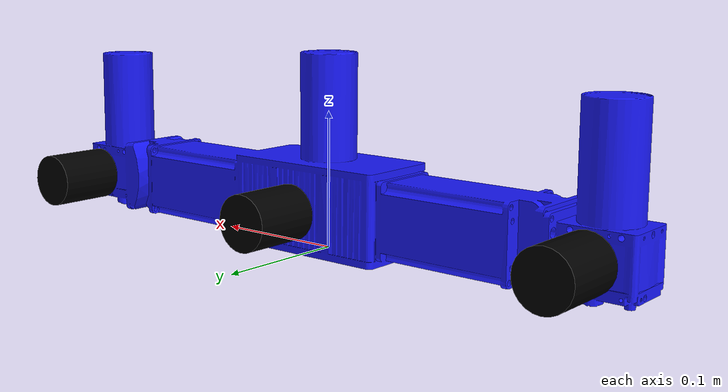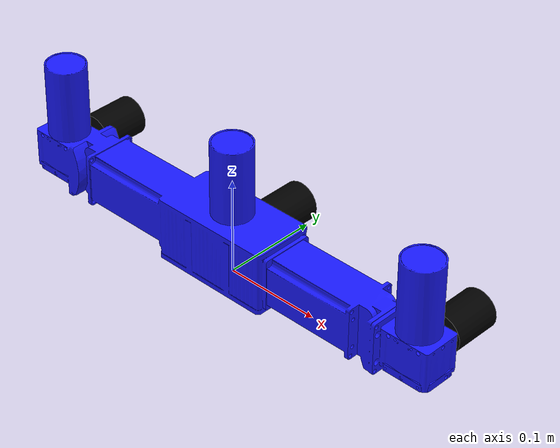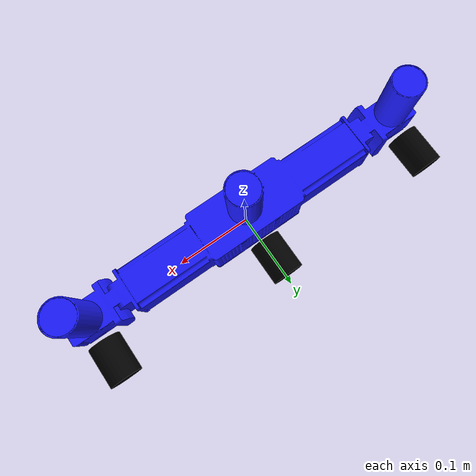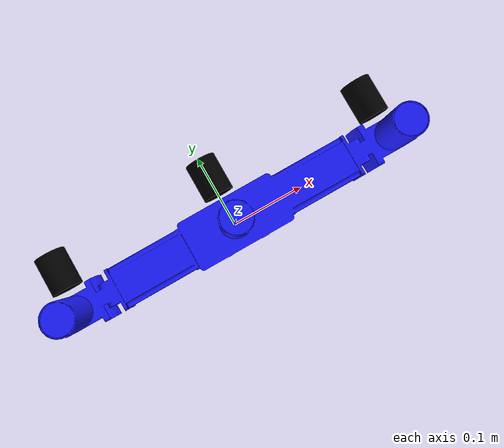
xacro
<?xml version="1.0"?>
<robot name="ensenso_camera" xmlns:xacro="http://www.ros.org/wiki/xacro">
  <xacro:include filename="$(find ensenso_description)/ensenso.xacro" />

  <xacro:property name="camera_name" default="X200_xFA" />
  <xacro:ensenso_X400_xFA_Series name="${camera_name}" />
  <joint name="world_to_${camera_name}" type="fixed">
    <parent link="base_link" />
    <child link="${camera_name}" />
    <origin xyz="0 0 0" rpy="0 0 0" />
  </joint>

  <link name="base_link" />
</robot>
<!-- example usage with:
  roslaunch urdf_tutorial display.launch model:=`rospack find ensenso_description`/ensenso_X400_xFA_Series.xacro gui:=true
-->

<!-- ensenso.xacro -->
<robot name="ensenso_camera" xmlns:xacro="http://www.ros.org/wiki/xacro">

<material name="Ensenso/Blue">
  <color rgba="0.1 0.1 1.0 1.0"/>
</material>

<material name="Ensenso/Black">
  <color rgba="0.0 0.0 0.0 1.0"/>
</material>

  <xacro:macro name="ensenso_N3x_Series" params="name margin:=0.03">

    <link name="${name}">
      <visual>
        <origin rpy="0 0 0" xyz="0.00 0.0 0.0"/>
        <geometry>
          <mesh filename="package://ensenso_description/stl_meshes/N30-602-16.stl"/>
        </geometry>
        <material name="Ensenso/Blue"/>
      </visual>
      <collision>
        <origin rpy="0 0 0" xyz="-0.0085 0.00 0.026"/>
        <geometry>
          <box size="${margin+0.192} ${margin+0.050} ${margin+0.052}"/>
        </geometry>
      </collision>
    </link>

    <!-- Projector -->
    <joint name="${name}_projector_joint" type="fixed">
      <parent link="${name}"/>
      <child link="${name}_projector_lens_frame"/>
      <origin xyz="0 0.00 0.05" rpy=" 0 0 0"/>
    </joint>
    <link name="${name}_projector_lens_frame"/>

    <!-- Left lens -->
    <joint name="${name}_left_lense_joint" type="fixed">
      <parent link="${name}"/>
      <child link="${name}_left_lens_frame"/>
      <origin xyz="-0.05 0.00 0.05" rpy=" 0 0 0"/>
    </joint>
    <link name="${name}_left_lens_frame"/>

    <!-- Right lens -->
    <joint name="${name}_right_lens_joint" type="fixed">
      <parent link="${name}"/>
      <child link="${name}_right_lens_frame"/>
      <origin xyz="0.05 0.00 0.05" rpy=" 0 0 0"/>
    </joint>
    <link name="${name}_right_lens_frame"/>

  </xacro:macro>

  <xacro:macro name="ensenso_N4x_Series" params="name margin:=0.03">

    <link name="${name}">
      <visual>
        <origin rpy="0 0 0" xyz="0.00 0.0 0.0"/>
        <geometry>
          <mesh filename="package://ensenso_description/stl_meshes/N4x-xxx.stl"/>
        </geometry>
        <material name="Ensenso/Blue"/>
      </visual>
      <collision>
        <origin rpy="0 0 0" xyz="-0.0085 0.00 0.026"/>
        <geometry>
          <box size="${margin+0.192} ${margin+0.050} ${margin+0.052}"/>
        </geometry>
      </collision>
    </link>

    <!-- Projector -->
    <joint name="${name}_projector_joint" type="fixed">
      <parent link="${name}"/>
      <child link="${name}_projector_lens_frame"/>
      <origin xyz="0 0.00 0.05" rpy=" 0 0 0"/>
    </joint>
    <link name="${name}_projector_lens_frame"/>

    <!-- Left lens -->
    <joint name="${name}_left_lense_joint" type="fixed">
      <parent link="${name}"/>
      <child link="${name}_left_lens_frame"/>
      <origin xyz="-0.05 0.00 0.05" rpy=" 0 0 0"/>
    </joint>
    <link name="${name}_left_lens_frame"/>

    <!-- Right lens -->
    <joint name="${name}_right_lens_joint" type="fixed">
      <parent link="${name}"/>
      <child link="${name}_right_lens_frame"/>
      <origin xyz="0.05 0.00 0.05" rpy=" 0 0 0"/>
    </joint>
    <link name="${name}_right_lens_frame"/>

  </xacro:macro>

  <xacro:macro name="ensenso_X200_Series" params="name margin:=0.03 radius_lens_sensor:=0.02 length_lens_sensor:=0.05 radius_lens_projector:=0.02 length_lens_projector:=0.05">

    <link name="${name}">
      <visual>
        <origin rpy="0 0 0" xyz="0 0 0"/>
        <geometry>
          <mesh filename="package://ensenso_description/stl_meshes/X3x-5CP-200.stl"/>
        </geometry>
        <material name="Ensenso/Blue"/>
      </visual>
      <collision>
        <origin rpy="0.0 0.0 0.0" xyz="0.0 0.0005 0.033"/>
        <geometry>
          <box size="${margin+0.24350} ${margin+0.08} ${margin+0.066}"/>
        </geometry>
      </collision>
    </link>

    <!-- Left lens -->
    <joint name="${name}_left_lens_joint" type="fixed">
      <parent link="${name}"/>
      <child link="${name}_left_lens_frame"/>
      <origin xyz="-0.1067 0.036 0.033" rpy="-1.570796 0 0"/>
    </joint>
    <xacro:objective name="${name}" margin="${margin}" identifier="left" radius="${radius_lens_sensor}" length_tube="${length_lens_sensor}"/>

    <!-- Right lens -->
    <joint name="${name}_right_lens_joint" type="fixed">
      <parent link="${name}"/>
      <child link="${name}_right_lens_frame"/>
      <origin xyz="0.1067 0.036 0.033" rpy="-1.570796 0 0"/>
    </joint>
    <xacro:objective name="${name}" margin="${margin}" identifier="right" radius="${radius_lens_sensor}" length_tube="${length_lens_sensor}"/>

    <!-- Projector lens -->
    <joint name="${name}_projector_lens_joint" type="fixed">
      <parent link="${name}"/>
      <child link="${name}_projector_lens_frame"/>
      <origin xyz="0 0.04 0.033" rpy="-1.570796 0 0"/>
    </joint>
    <xacro:objective name="${name}" margin="${margin}" identifier="projector" radius="${radius_lens_projector}" length_tube="${length_lens_projector}"/>
  </xacro:macro>

  <xacro:macro name="ensenso_X400_Series" params="name margin:=0.03 radius_lens_sensor:=0.02 length_lens_sensor:=0.05 radius_lens_projector:=0.02 length_lens_projector:=0.05">

    <link name="${name}">
      <visual>
        <origin rpy="0 0 0" xyz="0 0 0"/>
        <geometry>
          <mesh filename="package://ensenso_description/stl_meshes/X3x-5CP-400.stl"/>
        </geometry>
        <material name="Ensenso/Blue"/>
      </visual>
      <collision>
        <origin rpy="0.0 0.0 0.0" xyz="0.0 0.0005 0.033"/>
        <geometry>
          <box size="${margin+0.4515} ${margin+0.08} ${margin+0.066}"/>
        </geometry>
      </collision>
    </link>

    <!-- Left lens -->
    <joint name="${name}_left_lens_joint" type="fixed">
      <parent link="${name}"/>
      <child link="${name}_left_lens_frame"/>
      <origin xyz="-0.2109 0.036 0.033" rpy="-1.570796 0 0"/>
    </joint>
    <xacro:objective name="${name}" margin="${margin}" identifier="left" radius="${radius_lens_sensor}" length_tube="${length_lens_sensor}"/>

    <!-- Right lens -->
    <joint name="${name}_right_lens_joint" type="fixed">
      <parent link="${name}"/>
      <child link="${name}_right_lens_frame"/>
      <origin xyz="0.2109 0.036 0.033" rpy="-1.570796 0 0"/>
    </joint>
    <xacro:objective name="${name}" margin="${margin}" identifier="right" radius="${radius_lens_sensor}" length_tube="${length_lens_sensor}"/>

    <!-- Projector lens -->
    <joint name="${name}_projector_lens_joint" type="fixed">
      <parent link="${name}"/>
      <child link="${name}_projector_lens_frame"/>
      <origin xyz="0 0.04 0.033" rpy="-1.570796 0 0"/>
    </joint>
    <xacro:objective name="${name}" margin="${margin}" identifier="projector" radius="${radius_lens_projector}" length_tube="${length_lens_projector}"/>
  </xacro:macro>

  <xacro:macro name="ensenso_X200_xFA_Series" params="name margin:=0.03 radius_lens_sensor:=0.02 length_lens_sensor:=0.05 radius_lens_projector:=0.02 length_lens_projector:=0.05">

    <link name="${name}">
      <visual>
        <origin rpy="0 0 0" xyz="0 0 0"/>
        <geometry>
          <mesh filename="package://ensenso_description/stl_meshes/X3x-xFA-200.stl"/>
        </geometry>
        <material name="Ensenso/Blue"/>
      </visual>
      <collision>
        <origin rpy="0.0 0.0 0.0" xyz="0.0 -0.004 0.033"/>
        <geometry>
          <box size="${margin+0.2870} ${margin+0.09} ${margin+0.066}"/>
        </geometry>
      </collision>
    </link>

    <!-- Left lens -->
    <joint name="${name}_left_lens_joint" type="fixed">
      <parent link="${name}"/>
      <child link="${name}_left_lens_frame"/>
      <origin xyz="-0.117 0.031 0.033" rpy="-1.570796 0 0"/>
    </joint>
    <xacro:objective name="${name}" margin="${margin}" identifier="left" radius="${radius_lens_sensor}" length_tube="${length_lens_sensor}"/>

    <!-- Right lens -->
    <joint name="${name}_right_lens_joint" type="fixed">
      <parent link="${name}"/>
      <child link="${name}_right_lens_frame"/>
      <origin xyz="0.117 0.031 0.033" rpy="-1.570796 0 0"/>
    </joint>
    <xacro:objective name="${name}" margin="${margin}" identifier="right" radius="${radius_lens_sensor}" length_tube="${length_lens_sensor}"/>

    <!-- Projector lens -->
    <joint name="${name}_projector_lens_joint" type="fixed">
      <parent link="${name}"/>
      <child link="${name}_projector_lens_frame"/>
      <origin xyz="0 0.041 0.033" rpy="-1.570796 0 0"/>
    </joint>
    <xacro:objective name="${name}" margin="${margin}" identifier="projector" radius="${radius_lens_projector}" length_tube="${length_lens_projector}"/>
  </xacro:macro>

  <xacro:macro name="ensenso_X400_xFA_Series" params="name margin:=0.03 radius_lens_sensor:=0.02 length_lens_sensor:=0.05 radius_lens_projector:=0.02 length_lens_projector:=0.05">

    <link name="${name}">
      <visual>
        <origin rpy="0 0 0" xyz="0 0 0"/>
        <geometry>
          <mesh filename="package://ensenso_description/stl_meshes/X3x-xFA-400.stl"/>
        </geometry>
        <material name="Ensenso/Blue"/>
      </visual>
      <collision>
        <origin rpy="0.0 0.0 0.0" xyz="0.0 -0.004 0.033"/>
        <geometry>
          <box size="${margin+0.4950} ${margin+0.09} ${margin+0.066}"/>
        </geometry>
      </collision>
    </link>

    <!-- Left lens -->
    <joint name="${name}_left_lens_joint" type="fixed">
      <parent link="${name}"/>
      <child link="${name}_left_lens_frame"/>
      <origin xyz="-0.22125 0.031 0.033" rpy="-1.570796 0 0"/>
    </joint>
    <xacro:objective name="${name}" margin="${margin}" identifier="left" radius="${radius_lens_sensor}" length_tube="${length_lens_sensor}"/>

    <!-- Right lens -->
    <joint name="${name}_right_lens_joint" type="fixed">
      <parent link="${name}"/>
      <child link="${name}_right_lens_frame"/>
      <origin xyz="0.22125 0.031 0.033" rpy="-1.570796 0 0"/>
    </joint>
    <xacro:objective name="${name}" margin="${margin}" identifier="right" radius="${radius_lens_sensor}" length_tube="${length_lens_sensor}"/>

    <!-- Projector lens -->
    <joint name="${name}_projector_lens_joint" type="fixed">
      <parent link="${name}"/>
      <child link="${name}_projector_lens_frame"/>
      <origin xyz="0 0.041 0.033" rpy="-1.570796 0 0"/>
    </joint>
    <xacro:objective name="${name}" margin="${margin}" identifier="projector" radius="${radius_lens_projector}" length_tube="${length_lens_projector}"/>
  </xacro:macro>

  <xacro:macro name="objective" params="name margin identifier radius length_tube">
    <link name="${name}_${identifier}_lens_frame">
      <visual>
        <origin xyz="0.0 0.0 ${length_tube / 2.0}" rpy="0 0 0"/>
        <geometry>
          <cylinder length="${length_tube}" radius="${radius}"/>
        </geometry>
        <material name="Ensenso/Black"/>
      </visual>
      <collision>
        <origin xyz="0.0 0.0 ${(length_tube+2*margin) / 2.0}" rpy="0 0 0"/>
        <geometry>
          <cylinder length="${length_tube+2*margin}" radius="${radius+margin}"/>
        </geometry>
      </collision>
    </link>
  </xacro:macro>

</robot>
